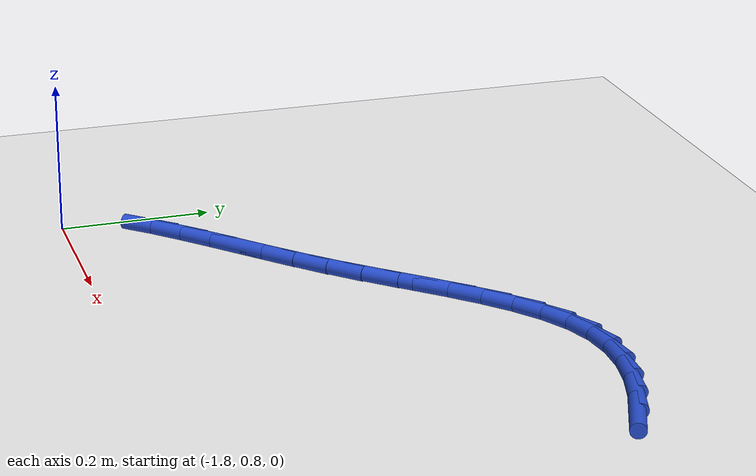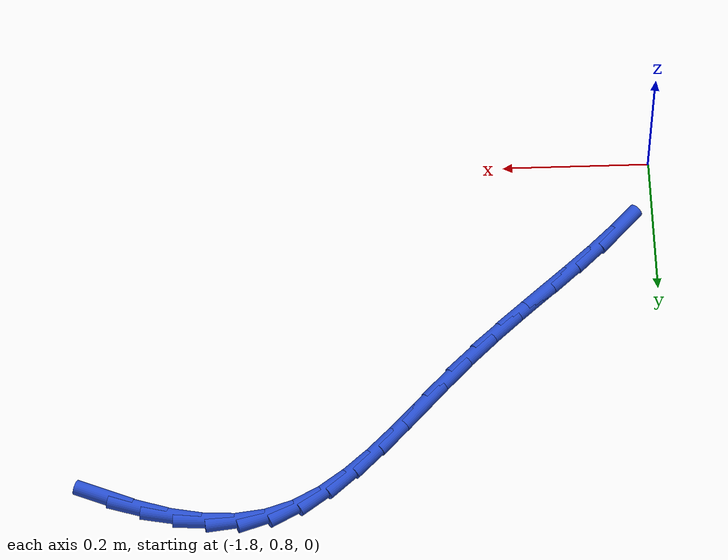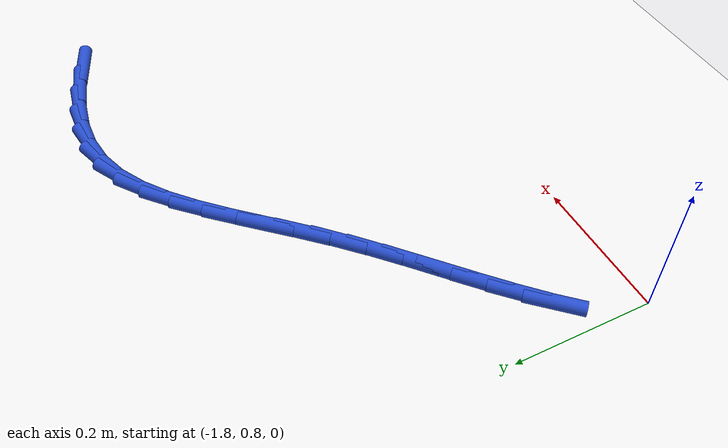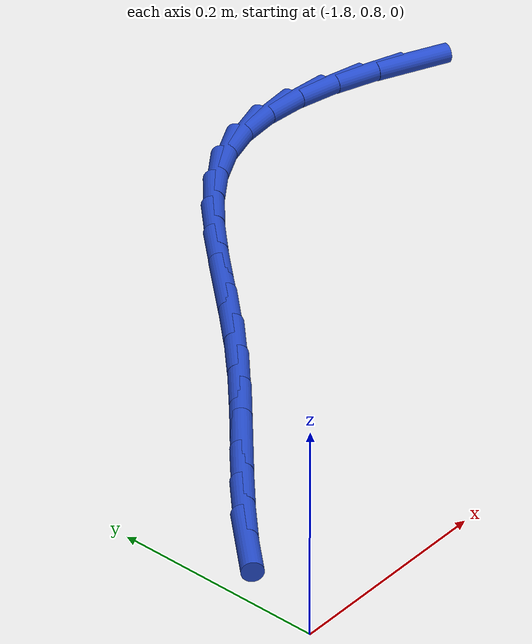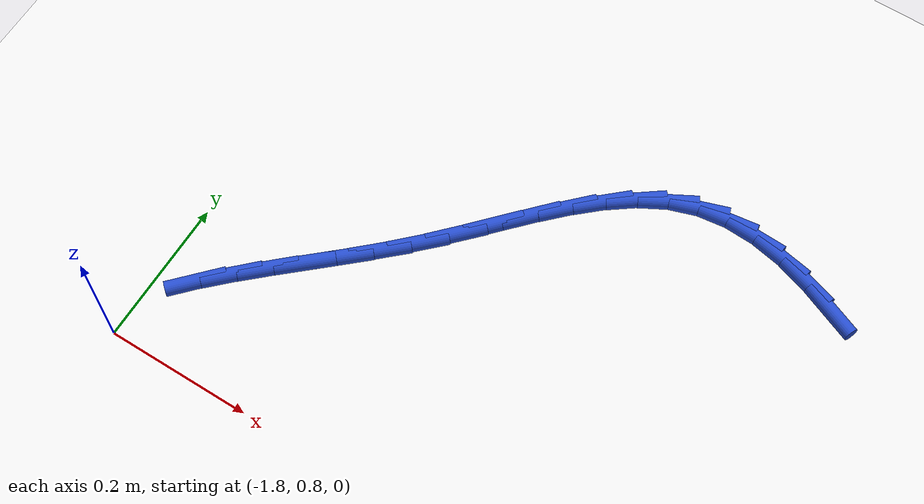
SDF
<sdf version="1.6">
 <world name="default">
  <model name="ground_plane">
   <static>1</static>
   <link name="link">
    <collision name="collision">
     <geometry><plane><normal>0 0 1</normal><size>100 100</size></plane></geometry>
     <surface><friction><ode><mu>100</mu><mu2>50</mu2></ode></friction></surface>
    </collision>
    <visual name="visual">
     <cast_shadows>0</cast_shadows>
     <geometry><plane><normal>0 0 1</normal><size>100 100</size></plane></geometry>
     <material>
      <script><uri>file://media/materials/scripts/gazebo.material</uri><name>Gazebo/WhiteGlow</name></script>
     </material>
    </visual>
   </link>
  </model>
  <model name="line">
   <link name="link_37">
    <pose>-1.0529128518955693 1.3030411580519314 0.01 0 1.57 -0.39338912335672166</pose>
    <collision name="collision">
     <geometry><cylinder><radius>0.01</radius><length>0.08</length></cylinder></geometry>
    </collision>
    <visual name="visual">
     <material>
      <script><name>Gazebo/Blue</name><uri>file://media/materials/scripts/gazebo.material</uri></script>
     </material>
     <geometry><cylinder><radius>0.01</radius><length>0.08</length></cylinder></geometry>
    </visual>
   </link>
   <link name="link_38">
    <pose>-1.0969499387486088 1.3213175279402967 0.01 0 1.57 -0.30290265232568686</pose>
    <collision name="collision">
     <geometry><cylinder><radius>0.01</radius><length>0.08</length></cylinder></geometry>
    </collision>
    <visual name="visual">
     <material>
      <script><name>Gazebo/Blue</name><uri>file://media/materials/scripts/gazebo.material</uri></script>
     </material>
     <geometry><cylinder><radius>0.01</radius><length>0.08</length></cylinder></geometry>
    </visual>
   </link>
   <link name="link_39">
    <pose>-1.140327092865052 1.3348737353572702 0.01 0 1.57 -0.18844904981153687</pose>
    <collision name="collision">
     <geometry><cylinder><radius>0.01</radius><length>0.08</length></cylinder></geometry>
    </collision>
    <visual name="visual">
     <material>
      <script><name>Gazebo/Blue</name><uri>file://media/materials/scripts/gazebo.material</uri></script>
     </material>
     <geometry><cylinder><radius>0.01</radius><length>0.08</length></cylinder></geometry>
    </visual>
   </link>
   <link name="link_40">
    <pose>-1.1827804363528576 1.3429700974340752 0.01 0 1.57 -0.04593407311028316</pose>
    <collision name="collision">
     <geometry><cylinder><radius>0.01</radius><length>0.08</length></cylinder></geometry>
    </collision>
    <visual name="visual">
     <material>
      <script><name>Gazebo/Blue</name><uri>file://media/materials/scripts/gazebo.material</uri></script>
     </material>
     <geometry><cylinder><radius>0.01</radius><length>0.08</length></cylinder></geometry>
    </visual>
   </link>
   <link name="link_41">
    <pose>-1.2240460913199849 1.3448669313019341 0.01 0 1.57 0.12597737258143998</pose>
    <collision name="collision">
     <geometry><cylinder><radius>0.01</radius><length>0.08</length></cylinder></geometry>
    </collision>
    <visual name="visual">
     <material>
      <script><name>Gazebo/Blue</name><uri>file://media/materials/scripts/gazebo.material</uri></script>
     </material>
     <geometry><cylinder><radius>0.01</radius><length>0.08</length></cylinder></geometry>
    </visual>
   </link>
   <link name="link_42">
    <pose>-1.2638601798743911 1.3398245540920688 0.01 0 1.57 0.3214975895071282</pose>
    <collision name="collision">
     <geometry><cylinder><radius>0.01</radius><length>0.08</length></cylinder></geometry>
    </collision>
    <visual name="visual">
     <material>
      <script><name>Gazebo/Blue</name><uri>file://media/materials/scripts/gazebo.material</uri></script>
     </material>
     <geometry><cylinder><radius>0.01</radius><length>0.08</length></cylinder></geometry>
    </visual>
   </link>
   <link name="link_43">
    <pose>-1.3019678682103324 1.3271327014185228 0.01 0 1.57 0.5047521227173826</pose>
    <collision name="collision">
     <geometry><cylinder><radius>0.01</radius><length>0.08</length></cylinder></geometry>
    </collision>
    <visual name="visual">
     <material>
      <script><name>Gazebo/Blue</name><uri>file://media/materials/scripts/gazebo.material</uri></script>
     </material>
     <geometry><cylinder><radius>0.01</radius><length>0.08</length></cylinder></geometry>
    </visual>
   </link>
   <link name="link_44">
    <pose>-1.3383984215444635 1.3070052223917503 0.01 0 1.57 0.6421266942492326</pose>
    <collision name="collision">
     <geometry><cylinder><radius>0.01</radius><length>0.08</length></cylinder></geometry>
    </collision>
    <visual name="visual">
     <material>
      <script><name>Gazebo/Blue</name><uri>file://media/materials/scripts/gazebo.material</uri></script>
     </material>
     <geometry><cylinder><radius>0.01</radius><length>0.08</length></cylinder></geometry>
    </visual>
   </link>
   <link name="link_45">
    <pose>-1.3735152673537965 1.2807429246487931 0.01 0 1.57 0.7371121310087629</pose>
    <collision name="collision">
     <geometry><cylinder><radius>0.01</radius><length>0.08</length></cylinder></geometry>
    </collision>
    <visual name="visual">
     <material>
      <script><name>Gazebo/Blue</name><uri>file://media/materials/scripts/gazebo.material</uri></script>
     </material>
     <geometry><cylinder><radius>0.01</radius><length>0.08</length></cylinder></geometry>
    </visual>
   </link>
   <link name="link_46">
    <pose>-1.4077009726042722 1.249708872500018 0.01 0 1.57 0.7972309260210882</pose>
    <collision name="collision">
     <geometry><cylinder><radius>0.01</radius><length>0.08</length></cylinder></geometry>
    </collision>
    <visual name="visual">
     <material>
      <script><name>Gazebo/Blue</name><uri>file://media/materials/scripts/gazebo.material</uri></script>
     </material>
     <geometry><cylinder><radius>0.01</radius><length>0.08</length></cylinder></geometry>
    </visual>
   </link>
   <link name="link_47">
    <pose>-1.4413381042618272 1.2152661302557919 0.01 0 1.57 0.8284998812565498</pose>
    <collision name="collision">
     <geometry><cylinder><radius>0.01</radius><length>0.08</length></cylinder></geometry>
    </collision>
    <visual name="visual">
     <material>
      <script><name>Gazebo/Blue</name><uri>file://media/materials/scripts/gazebo.material</uri></script>
     </material>
     <geometry><cylinder><radius>0.01</radius><length>0.08</length></cylinder></geometry>
    </visual>
   </link>
   <link name="link_48">
    <pose>-1.4748092292924015 1.178777762226481 0.01 0 1.57 0.8345162907589683</pose>
    <collision name="collision">
     <geometry><cylinder><radius>0.01</radius><length>0.08</length></cylinder></geometry>
    </collision>
    <visual name="visual">
     <material>
      <script><name>Gazebo/Blue</name><uri>file://media/materials/scripts/gazebo.material</uri></script>
     </material>
     <geometry><cylinder><radius>0.01</radius><length>0.08</length></cylinder></geometry>
    </visual>
   </link>
   <link name="link_49">
    <pose>-1.5084969146619327 1.1416068327224527 0.01 0 1.57 0.8165226095980469</pose>
    <collision name="collision">
     <geometry><cylinder><radius>0.01</radius><length>0.08</length></cylinder></geometry>
    </collision>
    <visual name="visual">
     <material>
      <script><name>Gazebo/Blue</name><uri>file://media/materials/scripts/gazebo.material</uri></script>
     </material>
     <geometry><cylinder><radius>0.01</radius><length>0.08</length></cylinder></geometry>
    </visual>
   </link>
   <link name="link_50">
    <pose>-1.54278372733636 1.105116406054074 0.01 0 1.57 0.7798641708995144</pose>
    <collision name="collision">
     <geometry><cylinder><radius>0.01</radius><length>0.08</length></cylinder></geometry>
    </collision>
    <visual name="visual">
     <material>
      <script><name>Gazebo/Blue</name><uri>file://media/materials/scripts/gazebo.material</uri></script>
     </material>
     <geometry><cylinder><radius>0.01</radius><length>0.08</length></cylinder></geometry>
    </visual>
   </link>
   <link name="link_51">
    <pose>-1.5779122068913187 1.0703745921263061 0.01 0 1.57 0.7499004616827907</pose>
    <collision name="collision">
     <geometry><cylinder><radius>0.01</radius><length>0.08</length></cylinder></geometry>
    </collision>
    <visual name="visual">
     <material>
      <script><name>Gazebo/Blue</name><uri>file://media/materials/scripts/gazebo.material</uri></script>
     </material>
     <geometry><cylinder><radius>0.01</radius><length>0.08</length></cylinder></geometry>
    </visual>
   </link>
   <link name="link_52">
    <pose>-1.6135311153927105 1.0371987648849026 0.01 0 1.57 0.7341058412489484</pose>
    <collision name="collision">
     <geometry><cylinder><radius>0.01</radius><length>0.08</length></cylinder></geometry>
    </collision>
    <visual name="visual">
     <material>
      <script><name>Gazebo/Blue</name><uri>file://media/materials/scripts/gazebo.material</uri></script>
     </material>
     <geometry><cylinder><radius>0.01</radius><length>0.08</length></cylinder></geometry>
    </visual>
   </link>
   <link name="link_53">
    <pose>-1.6491318536956892 1.0050748318228773 0.01 0 1.57 0.7331231672038031</pose>
    <collision name="collision">
     <geometry><cylinder><radius>0.01</radius><length>0.08</length></cylinder></geometry>
    </collision>
    <visual name="visual">
     <material>
      <script><name>Gazebo/Blue</name><uri>file://media/materials/scripts/gazebo.material</uri></script>
     </material>
     <geometry><cylinder><radius>0.01</radius><length>0.08</length></cylinder></geometry>
    </visual>
   </link>
   <link name="link_54">
    <pose>-1.6842058215620117 0.97348869813011 0.01 0 1.57 0.7476702004918352</pose>
    <collision name="collision">
     <geometry><cylinder><radius>0.01</radius><length>0.08</length></cylinder></geometry>
    </collision>
    <visual name="visual">
     <material>
      <script><name>Gazebo/Blue</name><uri>file://media/materials/scripts/gazebo.material</uri></script>
     </material>
     <geometry><cylinder><radius>0.01</radius><length>0.08</length></cylinder></geometry>
    </visual>
   </link>
   <link name="link_55">
    <pose>-1.718244418753437 0.9419262689964797 0.01 0 1.57 0.7785535858960803</pose>
    <collision name="collision">
     <geometry><cylinder><radius>0.01</radius><length>0.08</length></cylinder></geometry>
    </collision>
    <visual name="visual">
     <material>
      <script><name>Gazebo/Blue</name><uri>file://media/materials/scripts/gazebo.material</uri></script>
     </material>
     <geometry><cylinder><radius>0.01</radius><length>0.08</length></cylinder></geometry>
    </visual>
   </link>
   <link name="link_56">
    <pose>-1.7507390450317206 0.9098734496118646 0.01 0 1.57 0.8265603442760346</pose>
    <collision name="collision">
     <geometry><cylinder><radius>0.01</radius><length>0.08</length></cylinder></geometry>
    </collision>
    <visual name="visual">
     <material>
      <script><name>Gazebo/Blue</name><uri>file://media/materials/scripts/gazebo.material</uri></script>
     </material>
     <geometry><cylinder><radius>0.01</radius><length>0.08</length></cylinder></geometry>
    </visual>
   </link>
  </model>
 </world>
</sdf>
